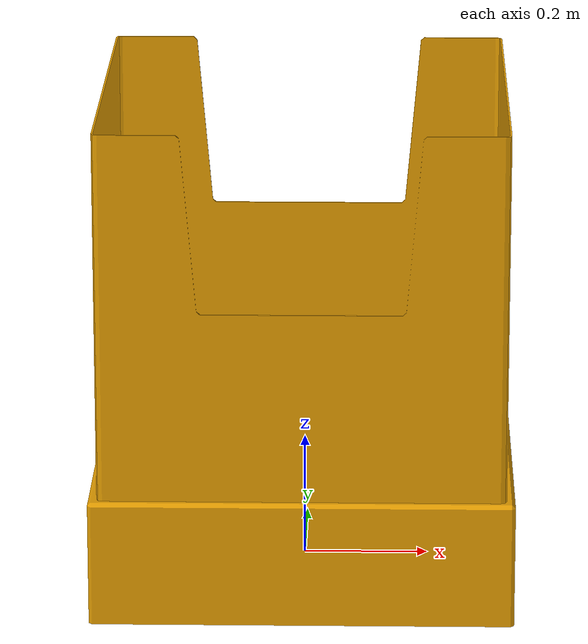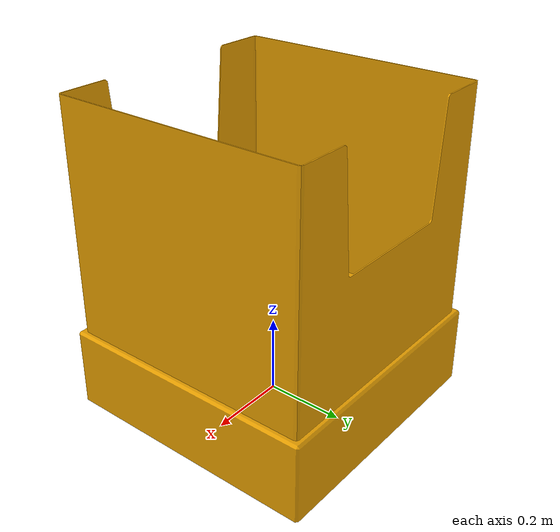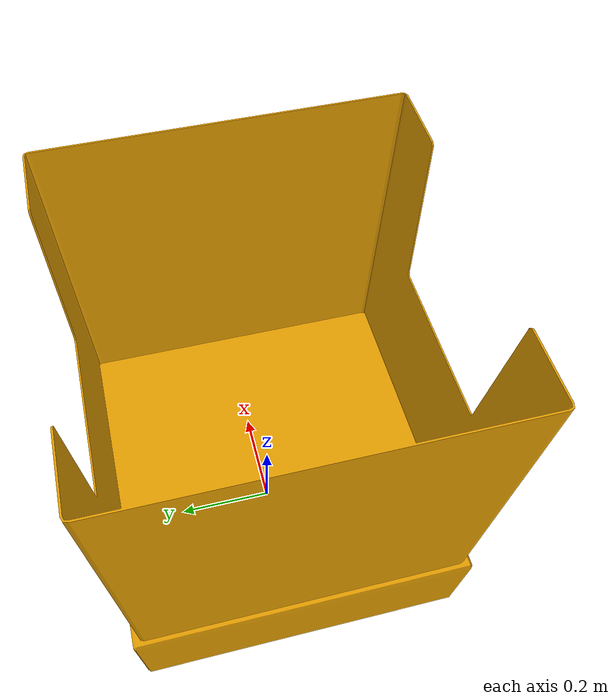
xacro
<?xml version="1.0"?>
<robot name="bin" xmlns:xacro="http://www.ros.org/wiki/xacro">
  <xacro:arg name="prefix" default="bin_1_"/>
  <xacro:arg name="mesh_path" default="$(find ros_industrial_support)"/>

  <!-- URDF -->
  <xacro:include filename="$(find ros_industrial_support)/urdf/bin/bin.urdf.xacro"/>
  <xacro:bin_urdf prefix="$(arg prefix)" mesh_path="$(arg mesh_path)"/>

  <!-- Gazebo -->
  <xacro:include filename="$(find ros_industrial_support)/urdf/bin/bin.gazebo.xacro"/>
  <xacro:bin_gazebo prefix="$(arg prefix)"/>

</robot>

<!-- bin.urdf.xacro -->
<robot xmlns:xacro="http://www.ros.org/wiki/xacro">

  <xacro:macro name="bin_urdf" params="prefix mesh_path:='package://ros_industrial_support'">
    <!-- link list -->
    <link name="${prefix}base_link">
      <visual>
        <origin xyz="0 0 0" rpy="0 0 0" />
        <geometry>
          <mesh filename="${mesh_path}/meshes/bin/visual/bin.dae" />
          <scale>0.6 0.6 0.6</scale>
        </geometry>
      </visual>
      <collision>
        <origin xyz="0 0 0" rpy="0 0 0"/>
        <geometry>
          <mesh filename="${mesh_path}/meshes/bin/collision/bin_bottom.dae"/>
          <scale>0.6 0.6 0.6</scale>
        </geometry>
      </collision>
      <collision>
        <origin xyz="0 0 0" rpy="0 0 0"/>
        <geometry>
          <mesh filename="${mesh_path}/meshes/bin/collision/bin_sides.dae"/>
          <scale>0.6 0.6 0.6</scale>
        </geometry>
      </collision>
      <inertial>
        <origin xyz="0 0 0" rpy="0 0 0" />
        <inertia ixx="1.0" ixy="0" ixz="0"
                 iyy="1.0" iyz="0"
                 izz="1.0" />
        <mass value="100" />
      </inertial>
    </link>
    <link name="${prefix}drop_point">
      <inertial>
        <origin xyz="0 0 0" rpy="0 0 0" />
        <inertia ixx="1.0" ixy="0" ixz="0"
                 iyy="1.0" iyz="0"
                 izz="1.0" />
        <mass value="1.0" />
      </inertial>
    </link>
    <!-- joint list -->
    <joint name="${prefix}joint_1" type="fixed">
      <origin xyz="0 0 1.0" rpy="0 0 0" />
      <parent link="${prefix}base_link" />
      <child link="${prefix}drop_point" />
    </joint>
  </xacro:macro>
</robot>
